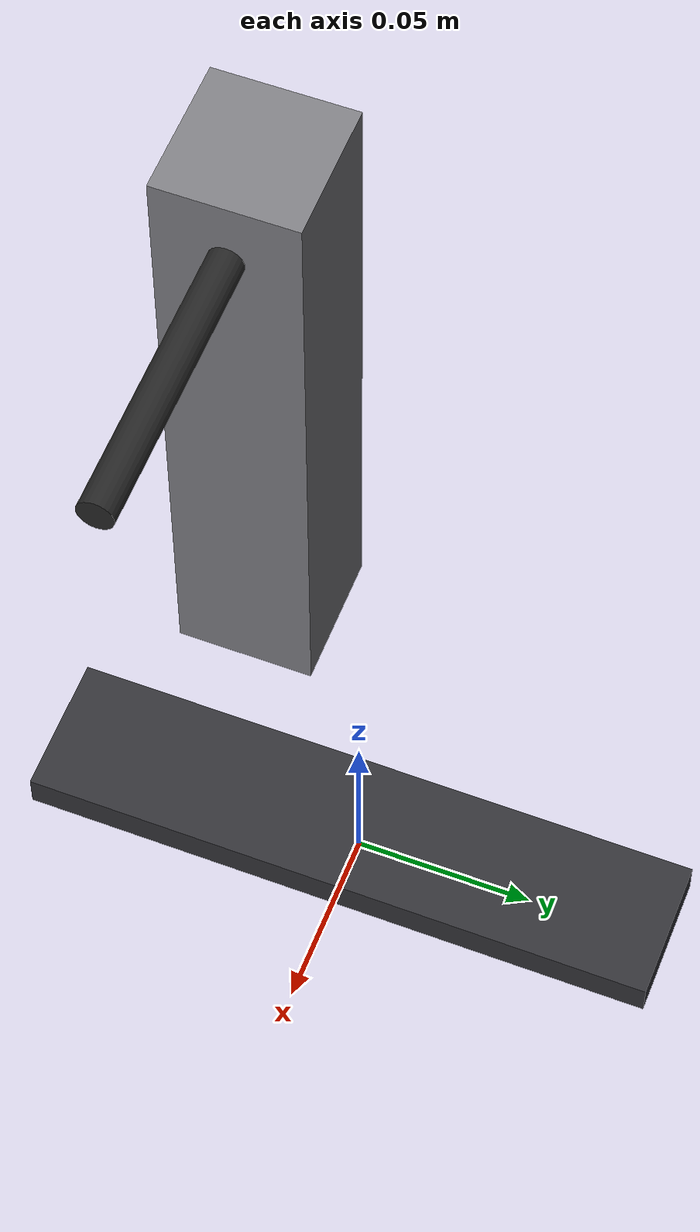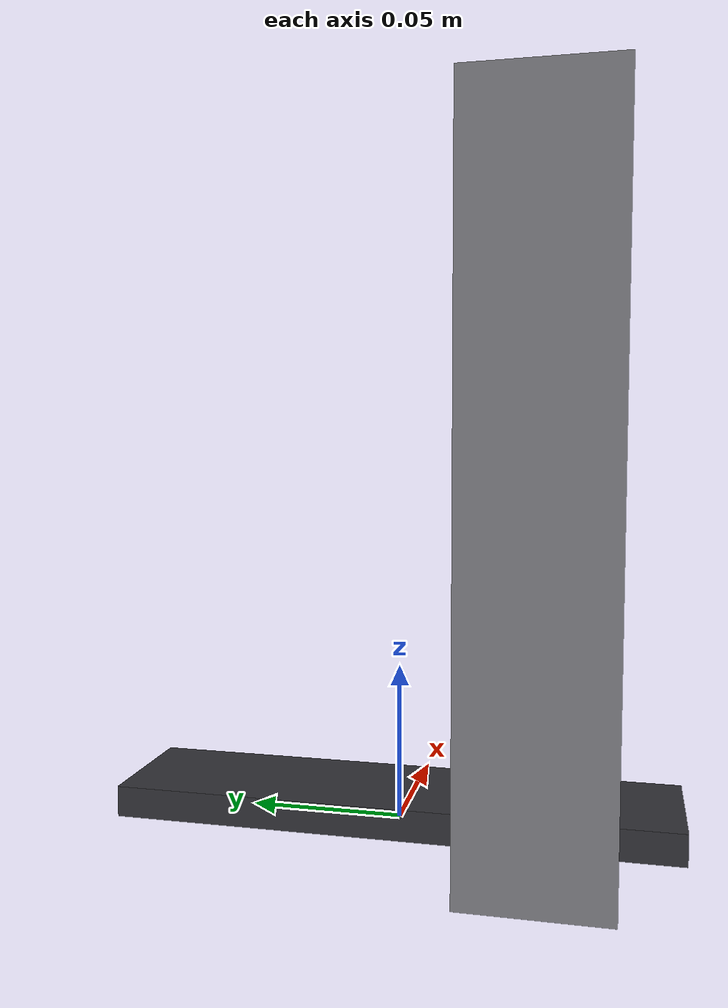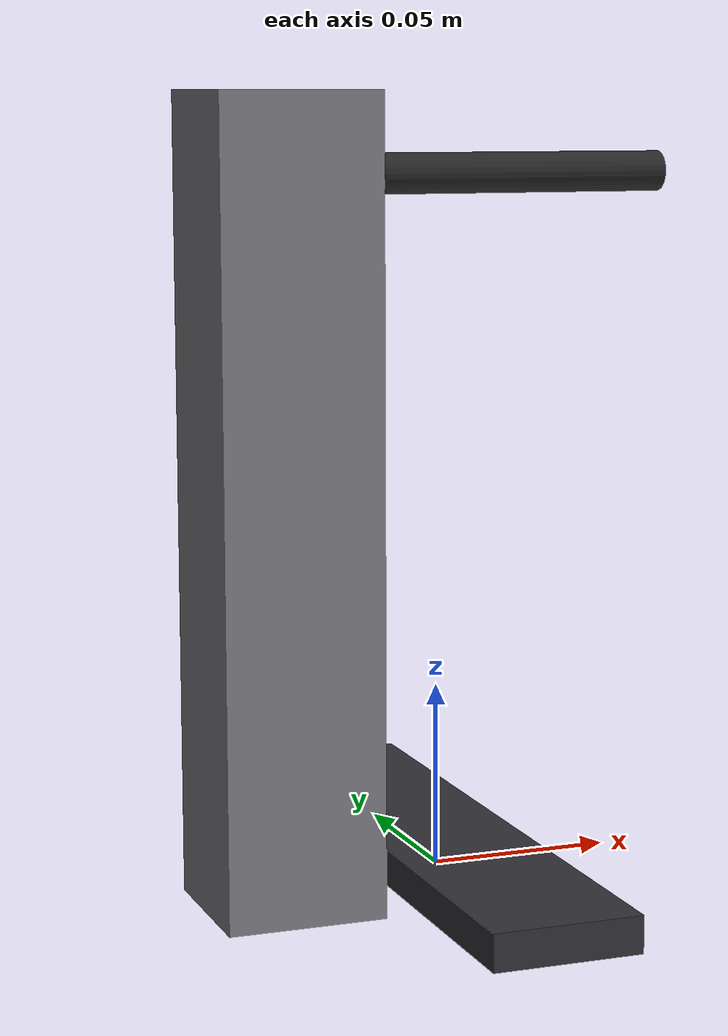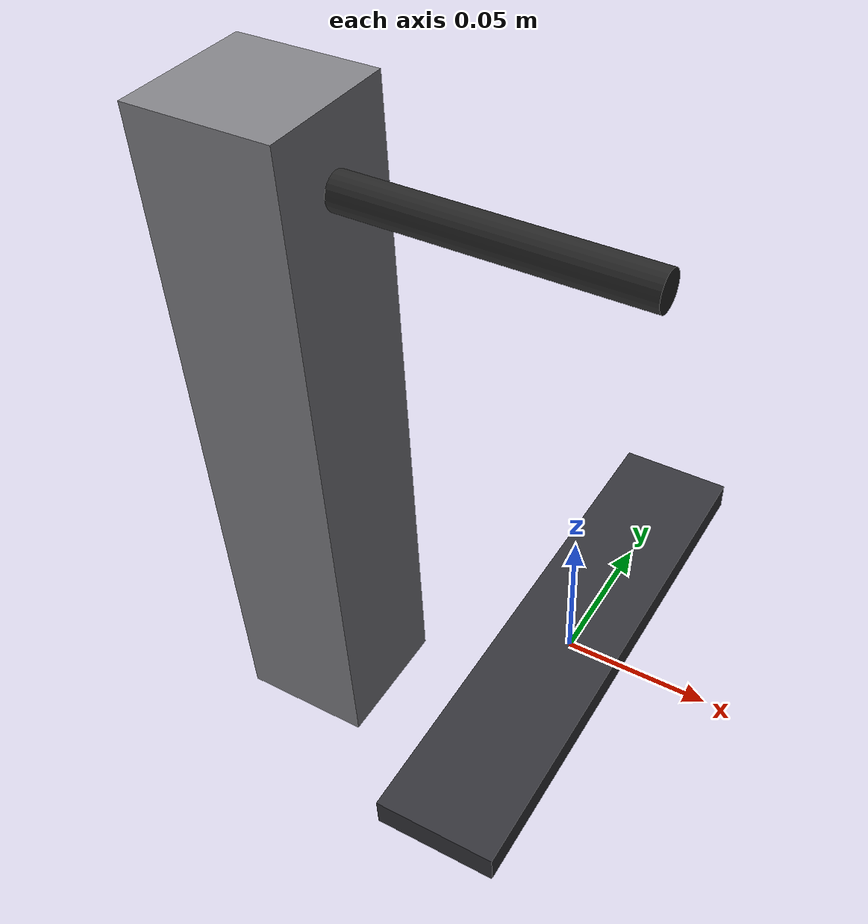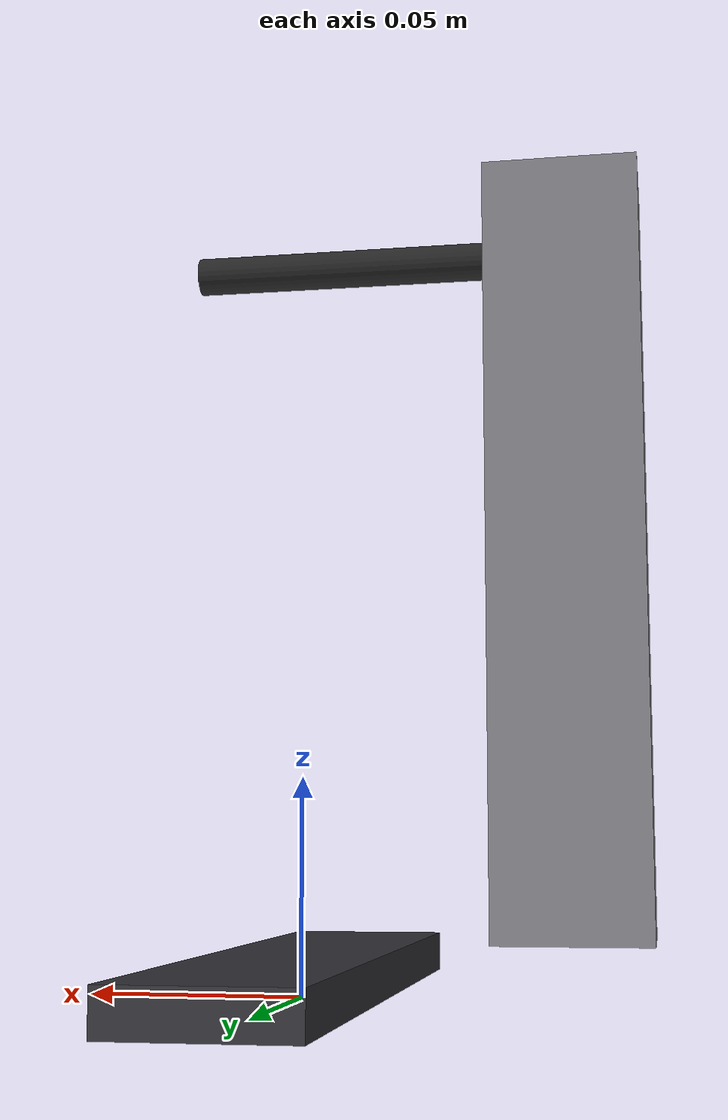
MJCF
<?xml version="1.0" encoding="utf-8"?>
<mujoco model="yarn_twist_tester">
  <compiler angle="radian" autolimits="true"/>
  <default>
    <default class="body"><geom contype="1" conaffinity="1"/></default>
  </default>
  <worldbody>
    <body name="base">
      <geom type="box" size="0.02 0.09 0.005" pos="0 0 0.005" rgba="0.2 0.2 0.22 1" class="body"/>
      <geom type="box" size="0.02 0.02 0.10" pos="-0.06 -0.05 0.11" rgba="0.5 0.5 0.52 1" class="body"/>
      <body name="twist_spindle" pos="-0.06 -0.05 0.19">
        <joint name="twist_spindle_joint" type="hinge" axis="0 1 0" range="-3.14159 3.14159" damping="0.1" frictionloss="0.05"/>
  <geom type="cylinder" size="0.005 0.05" pos="0.05 0 0" rgba="0.15 0.15 0.15 1" class="body" quat="0.7071068 0 0.7071068 0"/>
      </body>
    </body>
  </worldbody>
</mujoco>
